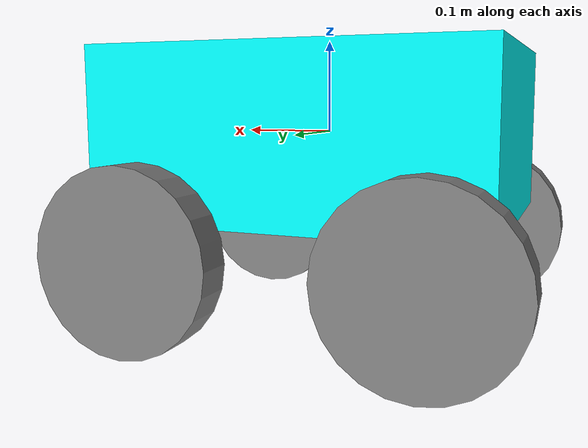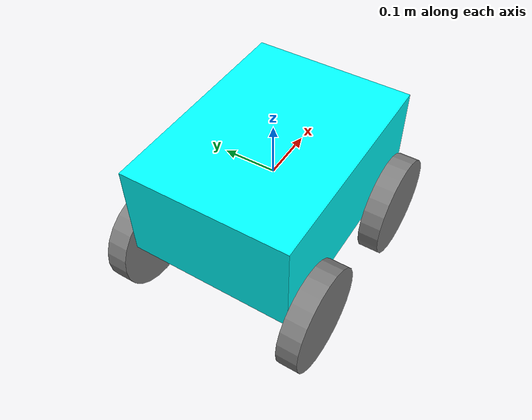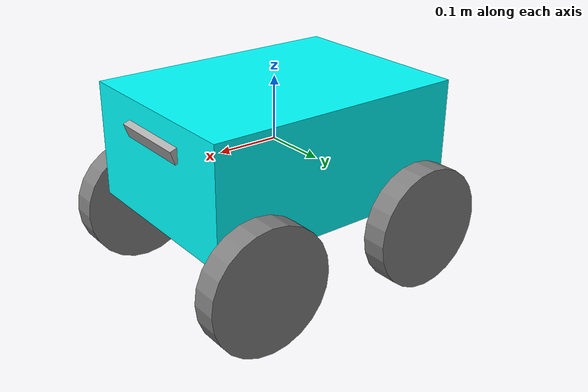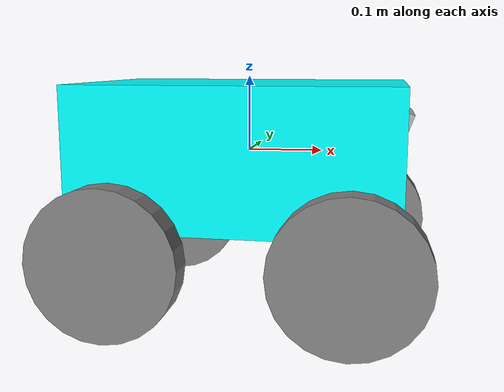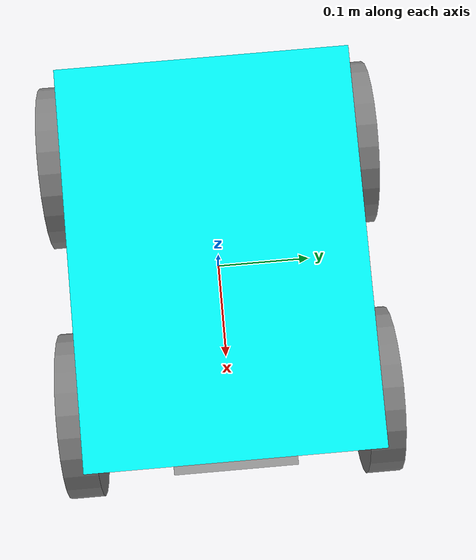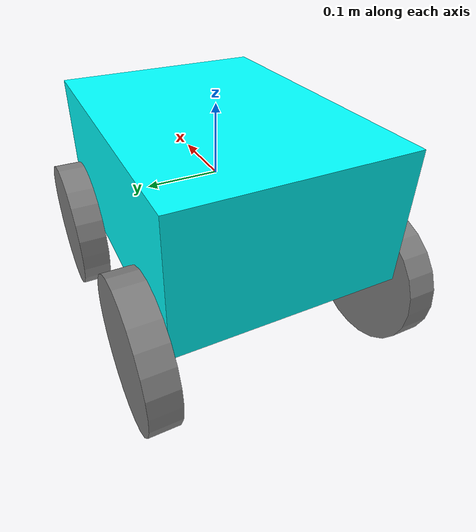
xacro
<?xml version="1.0"?>
<robot name="rover" xmlns:xacro="http://ros.org/wiki/xacro">
    <xacro:property name="base_width" value="0.31"/>
    <xacro:property name="base_length" value="0.42"/>
    <xacro:property name="base_height" value="0.184"/>
    <xacro:property name="wheel_radius" value="0.098"/>
    <xacro:property name="wheel_width" value="0.04"/>
    <xacro:property name="wheel_ygap" value="0.02"/>
    <xacro:property name="wheel_zoff" value="0.125"/>
    <xacro:property name="wheel_xoff" value="0.15"/>
    <xacro:property name="wheel_offset" value="${wheel_radius + wheel_zoff}"/>
    <gazebo>
        <plugin
                filename="ignition-gazebo-sensors-system"
                name="ignition::gazebo::systems::Sensors">
                <render_engine>ogre2</render_engine>
        </plugin>
    </gazebo>

    <xacro:macro name="box_inertia" params="m w h d">
        <inertial>
            <origin xyz="0 0 0" rpy="${pi/2} 0 ${pi/2}"/>
            <mass value="${m}"/>
            <inertia ixx="${(m/12) * (h*h + d*d)}" ixy="0.0" ixz="0.0" iyy="${(m/12) * (w*w + d*d)}" iyz="0.0" izz="${(m/12) * (w*w + h*h)}"/>
        </inertial>
    </xacro:macro>

    <xacro:macro name="cylinder_inertia" params="m r h">
        <inertial>
            <origin xyz="0 0 0" rpy="${pi/2} 0 0" />
            <mass value="${m}"/>
            <inertia ixx="${(m/12) * (3*r*r + h*h)}" ixy = "0" ixz = "0" iyy="${(m/12) * (3*r*r + h*h)}" iyz = "0" izz="${(m/2) * (r*r)}"/>
        </inertial>
    </xacro:macro>

    <link name="base_link">
        <visual>
            <geometry>
                <box size="${base_length} ${base_width} ${base_height}"/>
            </geometry>
            <material name="Cyan">
                <color rgba="0 1.0 1.0 1.0"/>
            </material>
        </visual>
        <collision>
            <geometry>
                <box size="${base_length} ${base_width} ${base_height}"/>
            </geometry>
        </collision>
        <xacro:box_inertia m="15" w="${base_width}" d="${base_length}" h="${base_height}"/>
    </link>

    <link name="base_footprint"/>

    <joint name="base_joint" type="fixed">
        <parent link="base_link"/>
        <child link="base_footprint"/>
        <origin xyz="0.0 0.0 -${wheel_offset}" rpy="0 0 0"/>
    </joint>

    <xacro:macro name="wheel" params="prefix x_reflect y_reflect">
        <link name="${prefix}_link">
            <visual>
                <origin xyz="0 0 0" rpy="${pi/2} 0 0"/>
                <geometry>
                    <cylinder radius="${wheel_radius}" length="${wheel_width}"/>
                </geometry>
                <material name="Gray">
                    <color rgba="0.5 0.5 0.5 1.0"/>
                </material>
            </visual>
            <collision>
                <origin xyz="0 0 0" rpy="${pi/2} 0 0"/>
                <geometry>
                    <cylinder radius="${wheel_radius}" length="${wheel_width}"/>
                </geometry>
                <surface>
                    <friction>
                        <ode>
                            <mu>1</mu>  <!-- Friction coefficient -->
                            <mu2>0.5</mu2> <!-- Secondary friction coefficient -->
                            <slip1>0.0026</slip1>
                            <slip2>0</slip2>
                        </ode>
                    </friction>
                </surface>
            </collision>
            <xacro:cylinder_inertia m="0.3" r="${wheel_radius}" h="${wheel_width}"/>
        </link>

        <joint name="${prefix}_joint" type="revolute">
            <parent link="base_link"/>
            <child link="${prefix}_link"/>
            <origin xyz="${x_reflect*wheel_xoff} ${y_reflect*(base_width/2+wheel_ygap)} ${-wheel_zoff}" rpy="0 0 0"/>
            <axis xyz="0 1 0"/>
            <limit lower="-1e50" upper="1e50" effort="1000" velocity="2.0"/>
        </joint>
    </xacro:macro>

    <xacro:wheel prefix="drivewhl_l" x_reflect="-1" y_reflect="1" />
    <xacro:wheel prefix="drivewhl_r" x_reflect="-1" y_reflect="-1" />

    <xacro:wheel prefix="frontwhl_l" x_reflect="1" y_reflect="1" />
    <xacro:wheel prefix="frontwhl_r" x_reflect="1" y_reflect="-1" />

    <link name="imu_link">
        <visual>
            <geometry>
            <box size="0.1 0.1 0.1"/>
            </geometry>
        </visual>

        <collision>
            <geometry>
            <box size="0.1 0.1 0.1"/>
            </geometry>
        </collision>

        <xacro:box_inertia m="0.1" w="0.1" d="0.1" h="0.1"/>
    </link>

    <joint name="imu_joint" type="fixed">
        <parent link="base_link"/>
        <child link="imu_link"/>
        <origin xyz="0 0 0.01"/>
    </joint>

    <gazebo reference="imu_link">
        <sensor name="imu_sensor" type="imu">
            <topic>imu</topic>
            <always_on>true</always_on>
            <update_rate>50</update_rate>
            <ignition_frame_id>imu_link</ignition_frame_id>
            <noise>
                <type>gaussian</type>
                <mean>0.0</mean>
                <stddev>0.004</stddev>  <!-- Increase this if needed -->
            </noise>
        </sensor>
    </gazebo>

    <joint name="camera_joint" type="fixed">
        <parent link="base_link"/>
        <child link="camera_link"/>
        <origin xyz="${base_length/2} 0 ${base_height/4}" rpy="0 ${pi/9} 0"/>
    </joint>

    <link name="camera_link">
        <visual>
            <origin xyz="0 0 0" rpy="0 0 0"/>
            <geometry>
            <box size="0.015 0.130 0.022"/>
            </geometry>
        </visual>

        <collision>
            <origin xyz="0 0 0" rpy="0 0 0"/>
            <geometry>
            <box size="0.015 0.130 0.022"/>
            </geometry>
        </collision>

        <inertial>
            <origin xyz="0 0 0" rpy="0 0 0"/>
            <mass value="0.035"/>
            <inertia ixx="0.001"  ixy="0"  ixz="0" iyy="0.001" iyz="0" izz="0.001" />
        </inertial>
    </link>

    <joint name="camera_optical_joint" type="fixed">
        <parent link="camera_link"/>
        <child link="camera_link_optical"/>
        <origin xyz="0 0 0" rpy="${-pi/2} 0 ${-pi/2}"/>
    </joint>

    <link name="camera_link_optical"/>

    <gazebo reference="camera_link">
        <sensor name="rgb_camera" type="camera">
            <ignition_frame_id>camera_link_optical</ignition_frame_id>
            <pose>0 0 0 0 0 0</pose>
            <camera>
                <horizontal_fov>1.21126</horizontal_fov>
                <image>
                    <width>640</width>
                    <height>480</height>
                    <format>RGB_INT8</format>
                </image>
                <clip>
                    <near>0.1</near>
                    <far>100</far>
                </clip>
                <noise>
                    <type>gaussian</type>
                    <mean>0</mean>
                    <stddev>0.007</stddev>
                </noise>
            </camera>
            <always_on>1</always_on>
            <update_rate>30</update_rate>
            <visualize>false</visualize>
        </sensor>
        <sensor name="depth_camera" type="depth">
            <ignition_frame_id>camera_link_optical</ignition_frame_id>
            <pose>0 0 0 0 0 0</pose>
            <visualize>true</visualize>
            <camera>
                <horizontal_fov>1.487021</horizontal_fov>
                <width>640</width>
                <height>480</height>
                <clip>
                    <near>0.1</near>
                    <far>10</far>
                </clip>
                <noise>
                    <type>gaussian</type>
                    <mean>0.0</mean>
                    <stddev>0.100</stddev>
                </noise>
            </camera>
            <always_on>1</always_on>
            <update_rate>30</update_rate>
            <visualize>0</visualize>
        </sensor>
    </gazebo>

    <link name="gps_link"/>

    <joint name="gps_joint" type="fixed">
        <parent link="base_link"/>
        <child link="gps_link"/>
        <origin xyz="0 0.1 0" rpy="0 0 0"/>
    </joint>

    <gazebo reference="gps_link">
        <sensor name="navsat" type="navsat">
            <ignition_frame_id>gps_link</ignition_frame_id>
            <always_on>1</always_on>
            <update_rate>1</update_rate>
            <topic>navsat</topic>
        </sensor>
    </gazebo>

    <gazebo>
        <plugin
            filename="libignition-gazebo-diff-drive-system.so"
            name="ignition::gazebo::systems::DiffDrive">
            <left_joint>frontwhl_l_joint</left_joint>
            <right_joint>frontwhl_r_joint</right_joint>
            <left_joint>drivewhl_l_joint</left_joint>
            <right_joint>drivewhl_r_joint</right_joint>
            <wheel_separation>${base_length}</wheel_separation>
            <wheel_radius>${wheel_radius}</wheel_radius>
            <topic>cmd_vel</topic>
            <odom_topic>odom</odom_topic>
            <enable_odom_tf>false</enable_odom_tf>
            <frame_id>odom</frame_id>
            <child_frame_id>base_link</child_frame_id>
            <odom_publish_frequency>50</odom_publish_frequency>
            <max_angular_velocity>0.4</max_angular_velocity>
            <min_angular_velocity>-0.4</min_angular_velocity>
        </plugin>
    </gazebo>
</robot>
